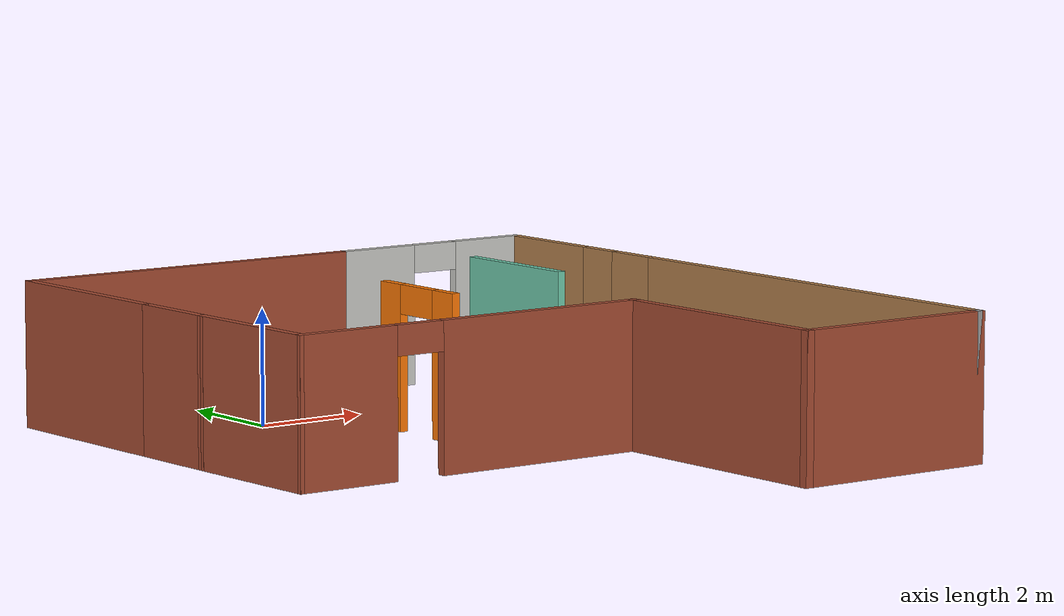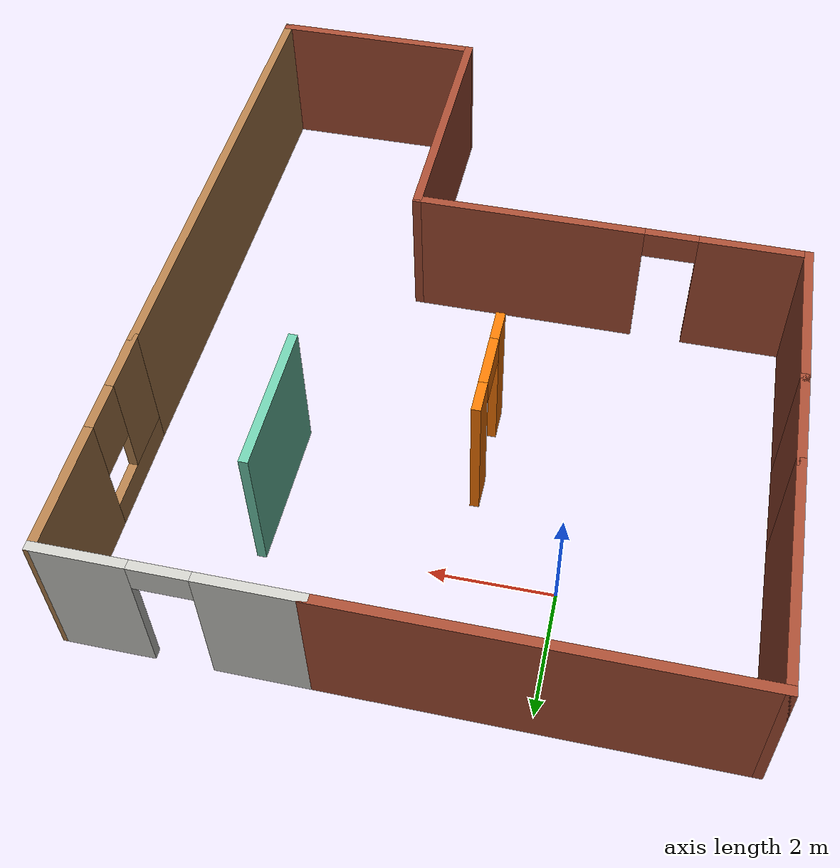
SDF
<?xml version='1.0'?>
<sdf version='1.7'>
  <model name='office'>
    <pose>1.92508 -3.9187 0 0 -0 0</pose>
    <link name='Wall_0'>
      <collision name='Wall_0_Collision'>
        <geometry>
          <box>
            <size>1.75 0.15 2.5</size>
          </box>
        </geometry>
        <pose>0 0 1.25 0 -0 0</pose>
      </collision>
      <visual name='Wall_0_Visual'>
        <pose>0 0 1.25 0 -0 0</pose>
        <geometry>
          <box>
            <size>1.75 0.15 2.5</size>
          </box>
        </geometry>
        <material>
          <script>
            <uri>file://media/materials/scripts/gazebo.material</uri>
            <name>Gazebo/Bricks</name>
          </script>
          <ambient>1 1 1 1</ambient>
        </material>
        <meta>
          <layer>0</layer>
        </meta>
      </visual>
      <pose>-5.11508 1.7087 0 0 -0 1.5708</pose>
    </link>
    <link name='Wall_1'>
      <collision name='Wall_1_Collision'>
        <geometry>
          <box>
            <size>3.75 0.15 2.5</size>
          </box>
        </geometry>
        <pose>0 0 1.25 0 -0 0</pose>
      </collision>
      <visual name='Wall_1_Visual'>
        <pose>0 0 1.25 0 -0 0</pose>
        <geometry>
          <box>
            <size>3.75 0.15 2.5</size>
          </box>
        </geometry>
        <material>
          <script>
            <uri>file://media/materials/scripts/gazebo.material</uri>
            <name>Gazebo/Bricks</name>
          </script>
          <ambient>1 1 1 1</ambient>
        </material>
        <meta>
          <layer>0</layer>
        </meta>
      </visual>
      <pose>-5.11508 4.3087 0 0 -0 1.5708</pose>
    </link>
    <link name='Wall_11'>
      <collision name='Wall_11_Collision'>
        <geometry>
          <box>
            <size>8.5 0.15 2.5</size>
          </box>
        </geometry>
        <pose>0 0 1.25 0 -0 0</pose>
      </collision>
      <visual name='Wall_11_Visual'>
        <pose>0 0 1.25 0 -0 0</pose>
        <geometry>
          <box>
            <size>8.5 0.15 2.5</size>
          </box>
        </geometry>
        <material>
          <script>
            <uri>file://media/materials/scripts/gazebo.material</uri>
            <name>Gazebo/Wood</name>
          </script>
          <ambient>1 1 1 1</ambient>
        </material>
        <meta>
          <layer>0</layer>
        </meta>
      </visual>
      <pose>5.11534 -1.93429 0 0 -0 -1.5708</pose>
    </link>
    <link name='Wall_12'>
      <collision name='Wall_12_Collision'>
        <geometry>
          <box>
            <size>0.15 0.15 2.5</size>
          </box>
        </geometry>
        <pose>0 0 1.25 0 -0 0</pose>
      </collision>
      <visual name='Wall_12_Visual'>
        <pose>0 0 1.25 0 -0 0</pose>
        <geometry>
          <box>
            <size>0.15 0.15 2.5</size>
          </box>
        </geometry>
        <material>
          <script>
            <uri>file://media/materials/scripts/gazebo.material</uri>
            <name>Gazebo/Grey</name>
          </script>
          <ambient>1 1 1 1</ambient>
        </material>
        <meta>
          <layer>0</layer>
        </meta>
      </visual>
      <pose>5.11534 -6.10929 0 0 -0 0</pose>
    </link>
    <link name='Wall_14'>
      <collision name='Wall_14_Collision'>
        <geometry>
          <box>
            <size>3.75 0.15 2.5</size>
          </box>
        </geometry>
        <pose>0 0 1.25 0 -0 0</pose>
      </collision>
      <visual name='Wall_14_Visual'>
        <pose>0 0 1.25 0 -0 0</pose>
        <geometry>
          <box>
            <size>3.75 0.15 2.5</size>
          </box>
        </geometry>
        <material>
          <script>
            <uri>file://media/materials/scripts/gazebo.material</uri>
            <name>Gazebo/Bricks</name>
          </script>
          <ambient>1 1 1 1</ambient>
        </material>
        <meta>
          <layer>0</layer>
        </meta>
      </visual>
      <pose>3.31534 -6.10929 0 0 -0 3.14159</pose>
    </link>
    <link name='Wall_15'>
      <collision name='Wall_15_Collision'>
        <geometry>
          <box>
            <size>4.5 0.15 2.5</size>
          </box>
        </geometry>
        <pose>0 0 1.25 0 -0 0</pose>
      </collision>
      <visual name='Wall_15_Visual'>
        <pose>0 0 1.25 0 -0 0</pose>
        <geometry>
          <box>
            <size>4.5 0.15 2.5</size>
          </box>
        </geometry>
        <material>
          <script>
            <uri>file://media/materials/scripts/gazebo.material</uri>
            <name>Gazebo/Bricks</name>
          </script>
          <ambient>1 1 1 1</ambient>
        </material>
        <meta>
          <layer>0</layer>
        </meta>
      </visual>
      <pose>1.51534 -3.93429 0 0 -0 1.5708</pose>
    </link>
    <link name='Wall_16'>
      <pose>-1.78466 -1.75929 0 0 -0 3.14159</pose>
      <visual name='Wall_16_Visual_0'>
        <pose>-1.38607 0 1.25 0 -0 0</pose>
        <geometry>
          <box>
            <size>3.97787 0.15 2.5</size>
          </box>
        </geometry>
        <material>
          <script>
            <uri>file://media/materials/scripts/gazebo.material</uri>
            <name>Gazebo/Bricks</name>
          </script>
          <ambient>1 1 1 1</ambient>
        </material>
        <meta>
          <layer>0</layer>
        </meta>
      </visual>
      <collision name='Wall_16_Collision_0'>
        <geometry>
          <box>
            <size>3.97787 0.15 2.5</size>
          </box>
        </geometry>
        <pose>-1.38607 0 1.25 0 -0 0</pose>
      </collision>
      <visual name='Wall_16_Visual_1'>
        <pose>2.43893 0 1.25 0 -0 0</pose>
        <geometry>
          <box>
            <size>1.87213 0.15 2.5</size>
          </box>
        </geometry>
        <material>
          <script>
            <uri>file://media/materials/scripts/gazebo.material</uri>
            <name>Gazebo/Bricks</name>
          </script>
          <ambient>1 1 1 1</ambient>
        </material>
        <meta>
          <layer>0</layer>
        </meta>
      </visual>
      <collision name='Wall_16_Collision_1'>
        <geometry>
          <box>
            <size>1.87213 0.15 2.5</size>
          </box>
        </geometry>
        <pose>2.43893 0 1.25 0 -0 0</pose>
      </collision>
      <visual name='Wall_16_Visual_2'>
        <pose>1.05287 0 2.25 0 -0 0</pose>
        <geometry>
          <box>
            <size>0.9 0.15 0.5</size>
          </box>
        </geometry>
        <material>
          <script>
            <uri>file://media/materials/scripts/gazebo.material</uri>
            <name>Gazebo/Bricks</name>
          </script>
          <ambient>1 1 1 1</ambient>
        </material>
        <meta>
          <layer>0</layer>
        </meta>
      </visual>
      <collision name='Wall_16_Collision_2'>
        <geometry>
          <box>
            <size>0.9 0.15 0.5</size>
          </box>
        </geometry>
        <pose>1.05287 0 2.25 0 -0 0</pose>
      </collision>
    </link>
    <link name='Wall_17'>
      <collision name='Wall_17_Collision'>
        <geometry>
          <box>
            <size>2.81817 0.15 2.5</size>
          </box>
        </geometry>
        <pose>0 0 1.25 0 -0 0</pose>
      </collision>
      <visual name='Wall_17_Visual'>
        <pose>0 0 1.25 0 -0 0</pose>
        <geometry>
          <box>
            <size>2.81817 0.15 2.5</size>
          </box>
        </geometry>
        <material>
          <script>
            <uri>file://media/materials/scripts/gazebo.material</uri>
            <name>Gazebo/Bricks</name>
          </script>
          <ambient>1 1 1 1</ambient>
        </material>
        <meta>
          <layer>0</layer>
        </meta>
      </visual>
      <pose>-5.09987 -0.425293 0 0 -0 1.5822</pose>
    </link>
    <link name='Wall_19'>
      <pose>-0.373713 1.55675 0 0 -0 1.5708</pose>
      <visual name='Wall_19_Visual_0'>
        <pose>-0.723633 0 1.25 0 -0 0</pose>
        <geometry>
          <box>
            <size>0.552734 0.15 2.5</size>
          </box>
        </geometry>
        <material>
          <script>
            <uri>file://media/materials/scripts/gazebo.material</uri>
            <name>Gazebo/Grey</name>
          </script>
          <ambient>0.996078 0.47451 0.0196078 1</ambient>
        </material>
        <meta>
          <layer>0</layer>
        </meta>
      </visual>
      <collision name='Wall_19_Collision_0'>
        <geometry>
          <box>
            <size>0.552734 0.15 2.5</size>
          </box>
        </geometry>
        <pose>-0.723633 0 1.25 0 -0 0</pose>
      </collision>
      <visual name='Wall_19_Visual_1'>
        <pose>0.726367 0 1.25 0 -0 0</pose>
        <geometry>
          <box>
            <size>0.547266 0.15 2.5</size>
          </box>
        </geometry>
        <material>
          <script>
            <uri>file://media/materials/scripts/gazebo.material</uri>
            <name>Gazebo/Grey</name>
          </script>
          <ambient>0.996078 0.47451 0.0196078 1</ambient>
        </material>
        <meta>
          <layer>0</layer>
        </meta>
      </visual>
      <collision name='Wall_19_Collision_1'>
        <geometry>
          <box>
            <size>0.547266 0.15 2.5</size>
          </box>
        </geometry>
        <pose>0.726367 0 1.25 0 -0 0</pose>
      </collision>
      <visual name='Wall_19_Visual_2'>
        <pose>0.002734 0 2.25 0 -0 0</pose>
        <geometry>
          <box>
            <size>0.9 0.15 0.5</size>
          </box>
        </geometry>
        <material>
          <script>
            <uri>file://media/materials/scripts/gazebo.material</uri>
            <name>Gazebo/Grey</name>
          </script>
          <ambient>0.996078 0.47451 0.0196078 1</ambient>
        </material>
        <meta>
          <layer>0</layer>
        </meta>
      </visual>
      <collision name='Wall_19_Collision_2'>
        <geometry>
          <box>
            <size>0.9 0.15 0.5</size>
          </box>
        </geometry>
        <pose>0.002734 0 2.25 0 -0 0</pose>
      </collision>
    </link>
    <link name='Wall_2'>
      <collision name='Wall_2_Collision'>
        <geometry>
          <box>
            <size>6.5 0.15 2.5</size>
          </box>
        </geometry>
        <pose>0 0 1.25 0 -0 0</pose>
      </collision>
      <visual name='Wall_2_Visual'>
        <pose>0 0 1.25 0 -0 0</pose>
        <geometry>
          <box>
            <size>6.5 0.15 2.5</size>
          </box>
        </geometry>
        <material>
          <script>
            <uri>file://media/materials/scripts/gazebo.material</uri>
            <name>Gazebo/Bricks</name>
          </script>
          <ambient>1 1 1 1</ambient>
        </material>
        <meta>
          <layer>0</layer>
        </meta>
      </visual>
      <pose>-1.94008 6.1087 0 0 -0 0</pose>
    </link>
    <link name='Wall_21'>
      <collision name='Wall_21_Collision'>
        <geometry>
          <box>
            <size>2.5 0.15 2.5</size>
          </box>
        </geometry>
        <pose>0 0 1.25 0 -0 0</pose>
      </collision>
      <visual name='Wall_21_Visual'>
        <pose>0 0 1.25 0 -0 0</pose>
        <geometry>
          <box>
            <size>2.5 0.15 2.5</size>
          </box>
        </geometry>
        <material>
          <script>
            <uri>file://media/materials/scripts/gazebo.material</uri>
            <name>Gazebo/Grey</name>
          </script>
          <ambient>0.435294 0.796078 0.67451 1</ambient>
        </material>
        <meta>
          <layer>0</layer>
        </meta>
      </visual>
      <pose>2.69845 2.92434 0 0 -0 -1.5708</pose>
    </link>
    <link name='Wall_3'>
      <pose>3.15992 6.1087 0 0 -0 0</pose>
      <visual name='Wall_3_Visual_0'>
        <pose>-1.18198 0 1.25 0 -0 0</pose>
        <geometry>
          <box>
            <size>1.63605 0.15 2.5</size>
          </box>
        </geometry>
        <material>
          <script>
            <uri>file://media/materials/scripts/gazebo.material</uri>
            <name>Gazebo/CeilingTiled</name>
          </script>
          <ambient>0.996078 0.47451 0.0196078 1</ambient>
        </material>
        <meta>
          <layer>0</layer>
        </meta>
      </visual>
      <collision name='Wall_3_Collision_0'>
        <geometry>
          <box>
            <size>1.63605 0.15 2.5</size>
          </box>
        </geometry>
        <pose>-1.18198 0 1.25 0 -0 0</pose>
      </collision>
      <visual name='Wall_3_Visual_1'>
        <pose>1.26802 0 1.25 0 -0 0</pose>
        <geometry>
          <box>
            <size>1.46395 0.15 2.5</size>
          </box>
        </geometry>
        <material>
          <script>
            <uri>file://media/materials/scripts/gazebo.material</uri>
            <name>Gazebo/CeilingTiled</name>
          </script>
          <ambient>0.996078 0.47451 0.0196078 1</ambient>
        </material>
        <meta>
          <layer>0</layer>
        </meta>
      </visual>
      <collision name='Wall_3_Collision_1'>
        <geometry>
          <box>
            <size>1.46395 0.15 2.5</size>
          </box>
        </geometry>
        <pose>1.26802 0 1.25 0 -0 0</pose>
      </collision>
      <visual name='Wall_3_Visual_2'>
        <pose>0.086047 0 2.25 0 -0 0</pose>
        <geometry>
          <box>
            <size>0.9 0.15 0.5</size>
          </box>
        </geometry>
        <material>
          <script>
            <uri>file://media/materials/scripts/gazebo.material</uri>
            <name>Gazebo/CeilingTiled</name>
          </script>
          <ambient>0.996078 0.47451 0.0196078 1</ambient>
        </material>
        <meta>
          <layer>0</layer>
        </meta>
      </visual>
      <collision name='Wall_3_Collision_2'>
        <geometry>
          <box>
            <size>0.9 0.15 0.5</size>
          </box>
        </geometry>
        <pose>0.086047 0 2.25 0 -0 0</pose>
      </collision>
    </link>
    <link name='Wall_4'>
      <pose>5.10013 4.17471 0 0 -0 -1.56293</pose>
      <visual name='Wall_4_Visual_0'>
        <pose>-0.934305 0 1.25 0 -0 0</pose>
        <geometry>
          <box>
            <size>2.1495 0.15 2.5</size>
          </box>
        </geometry>
        <material>
          <script>
            <uri>file://media/materials/scripts/gazebo.material</uri>
            <name>Gazebo/Wood</name>
          </script>
          <ambient>1 1 1 1</ambient>
        </material>
        <meta>
          <layer>0</layer>
        </meta>
      </visual>
      <collision name='Wall_4_Collision_0'>
        <geometry>
          <box>
            <size>2.1495 0.15 2.5</size>
          </box>
        </geometry>
        <pose>-0.934305 0 1.25 0 -0 0</pose>
      </collision>
      <visual name='Wall_4_Visual_1'>
        <pose>1.07475 0 0.25 0 -0 0</pose>
        <geometry>
          <box>
            <size>1.86861 0.15 0.5</size>
          </box>
        </geometry>
        <material>
          <script>
            <uri>file://media/materials/scripts/gazebo.material</uri>
            <name>Gazebo/Wood</name>
          </script>
          <ambient>1 1 1 1</ambient>
        </material>
        <meta>
          <layer>0</layer>
        </meta>
      </visual>
      <collision name='Wall_4_Collision_1'>
        <geometry>
          <box>
            <size>1.86861 0.15 0.5</size>
          </box>
        </geometry>
        <pose>1.07475 0 0.25 0 -0 0</pose>
      </collision>
      <visual name='Wall_4_Visual_2'>
        <pose>1.47475 0 1.5 0 -0 0</pose>
        <geometry>
          <box>
            <size>1.06861 0.15 2</size>
          </box>
        </geometry>
        <material>
          <script>
            <uri>file://media/materials/scripts/gazebo.material</uri>
            <name>Gazebo/Wood</name>
          </script>
          <ambient>1 1 1 1</ambient>
        </material>
        <meta>
          <layer>0</layer>
        </meta>
      </visual>
      <collision name='Wall_4_Collision_2'>
        <geometry>
          <box>
            <size>1.06861 0.15 2</size>
          </box>
        </geometry>
        <pose>1.47475 0 1.5 0 -0 0</pose>
      </collision>
      <visual name='Wall_4_Visual_3'>
        <pose>0.540446 0 1.9 0 -0 0</pose>
        <geometry>
          <box>
            <size>0.8 0.15 1.2</size>
          </box>
        </geometry>
        <material>
          <script>
            <uri>file://media/materials/scripts/gazebo.material</uri>
            <name>Gazebo/Wood</name>
          </script>
          <ambient>1 1 1 1</ambient>
        </material>
        <meta>
          <layer>0</layer>
        </meta>
      </visual>
      <collision name='Wall_4_Collision_3'>
        <geometry>
          <box>
            <size>0.8 0.15 1.2</size>
          </box>
        </geometry>
        <pose>0.540446 0 1.9 0 -0 0</pose>
      </collision>
    </link>
    <static>1</static>
  </model>
</sdf>
